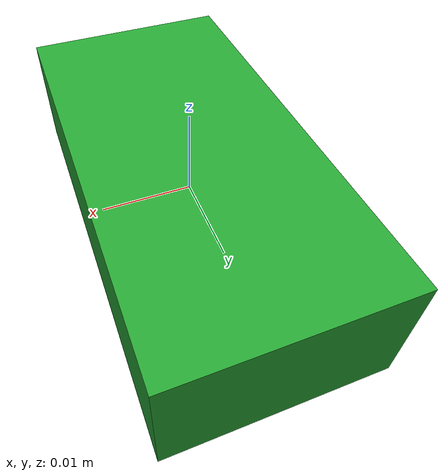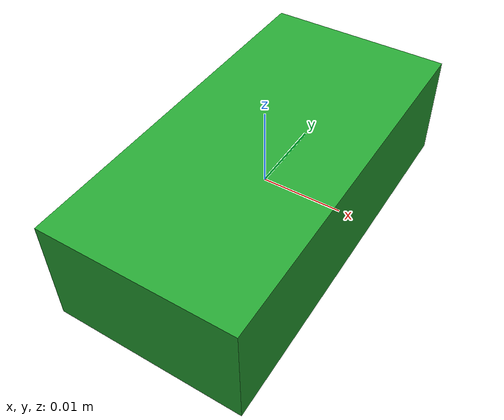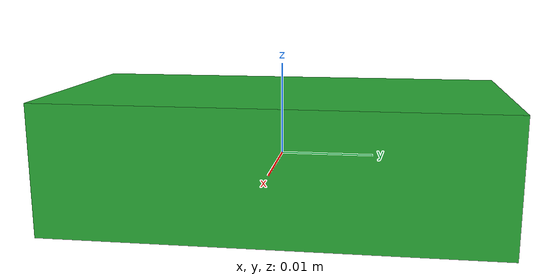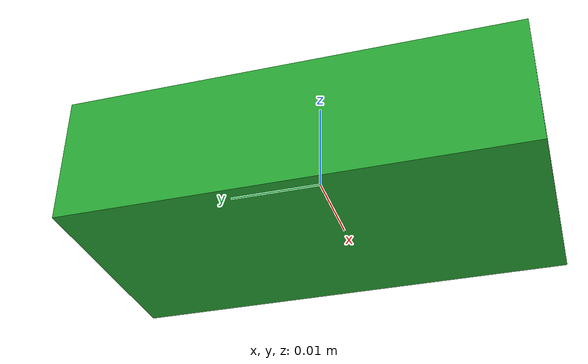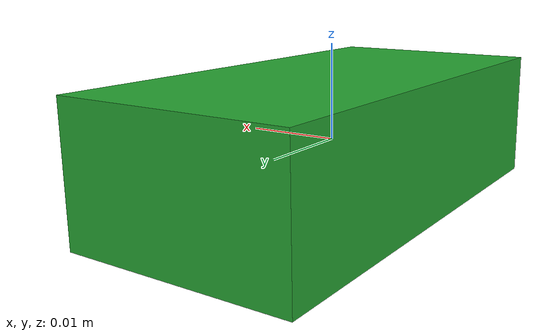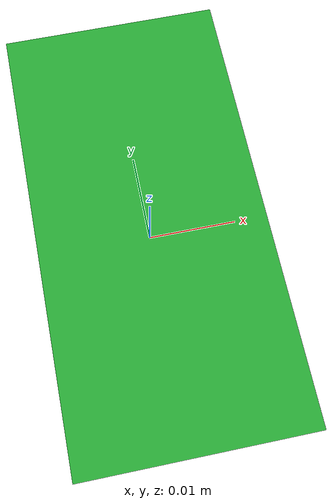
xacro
<?xml version="1.0"?>
<robot xmlns:xacro="http://www.ros.org/wiki/xacro" name="my_model">

	<!-- Include the Gazebo definitions  -->
	<xacro:include filename="gazebo.xacro"/>

	<link name="model">
		<visual>
			<geometry>
				<box size="0.024 0.048 0.014"/>
			</geometry>
			<origin rpy="0 0 0" xyz="0 0 0"/>
		</visual>

		<collision>
			<geometry>
				<box size="0.024 0.048 0.014"/>
			</geometry>
		</collision>

		<xacro:inertial_box mass="0.02" x="0.024" y="0.048" z="0.014">
			<origin xyz="0 0 0" rpy="0 0 0"/>
		</xacro:inertial_box>

	</link>

</robot>

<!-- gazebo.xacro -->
<robot xmlns:xacro="http://www.ros.org/wiki/xacro" >

    <xacro:include filename="inertial.xacro"/>

	<gazebo>
		<plugin name="ground_truth_plugin" filename="libgazebo_ros_p3d.so">
			<update_rate>50.0</update_rate>
			<body_name>model</body_name>
			<frame_name>world</frame_name>
		</plugin>
	</gazebo>

	<gazebo reference="model">
		<mu1>0.0</mu1>
		<mu2>0.0</mu2>
		<material>Gazebo/Green</material>
	</gazebo>

</robot>

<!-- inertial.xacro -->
<robot xmlns:xacro="http://www.ros.org/wiki/xacro" >

	<xacro:macro name="inertial_cylinder" params="mass length radius *origin">
        <inertial>
            <xacro:insert_block name="origin"/>
            <mass value="${mass}" />
            <inertia ixx="${(1/12) * mass * (3*radius*radius + length*length)}" ixy="0.0" ixz="0.0"
                    iyy="${(1/12) * mass * (3*radius*radius + length*length)}" iyz="0.0"
                    izz="${(1/2) * mass * (radius*radius)}" />
        </inertial>
    </xacro:macro>

    <xacro:macro name="inertial_box" params="mass x y z *origin">
        <inertial>
            <xacro:insert_block name="origin"/>
            <mass value="${mass}" />
            <inertia ixx="${(1/12) * mass * (y*y+z*z)}" ixy="0.0" ixz="0.0"
                    iyy="${(1/12) * mass * (x*x+z*z)}" iyz="0.0"
                    izz="${(1/12) * mass * (x*x+y*y)}" />
        </inertial>
    </xacro:macro>

</robot>
